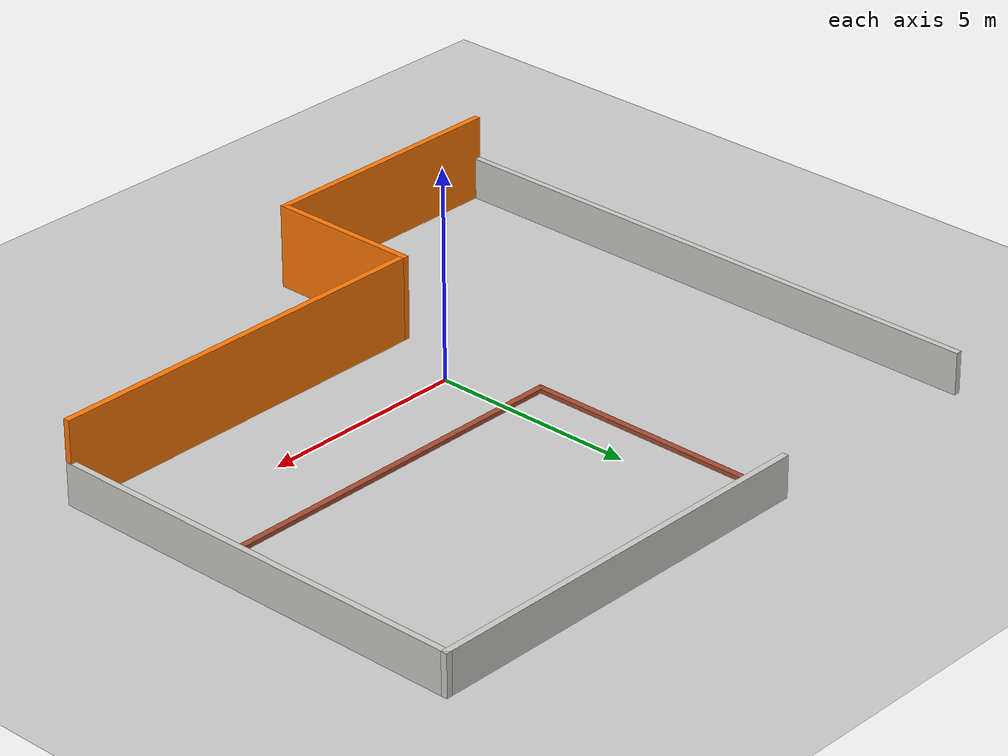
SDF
<sdf version="1.6">
 <world name="default">
  <light name="sun" type="directional">
   <pose>0 0 10 0 -0 0</pose>
   <diffuse>0.8 0.8 0.8 1</diffuse>
   <specular>0.2 0.2 0.2 1</specular>
   <attenuation>
    <range>1000</range>
    <constant>0.9</constant>
    <linear>0.01</linear>
    <quadratic>0.001</quadratic>
   </attenuation>
   <direction>-0.5 0.1 -0.9</direction>
  </light>
  <model name="ground_plane">
   <static>1</static>
   <link name="link">
    <collision name="collision">
     <geometry><plane><normal>0 0 1</normal><size>100 100</size></plane></geometry>
     <surface>
      <contact><collide_bitmask>65535</collide_bitmask></contact>
      <friction><ode><mu>100</mu><mu2>50</mu2></ode></friction>
     </surface>
    </collision>
    <visual name="visual">
     <cast_shadows>0</cast_shadows>
     <geometry><plane><normal>0 0 1</normal><size>100 100</size></plane></geometry>
     <material>
      <script><uri>file://media/materials/scripts/gazebo.material</uri><name>Gazebo/Grey</name></script>
     </material>
    </visual>
   </link>
  </model>
  <gravity>0 0 -9.8</gravity>
  <magnetic_field>6e-06 2.3e-05 -4.2e-05</magnetic_field>
  <atmosphere type="adiabatic"/>
  <physics name="default_physics" default="0" type="ode">
   <max_step_size>0.001</max_step_size>
   <real_time_factor>1</real_time_factor>
   <real_time_update_rate>1000</real_time_update_rate>
  </physics>
  <scene><ambient>0.4 0.4 0.4 1</ambient><background>0.7 0.7 0.7 1</background><shadows>1</shadows></scene>
  <audio><device>default</device></audio>
  <spherical_coordinates>
   <surface_model>EARTH_WGS84</surface_model>
   <latitude_deg>0</latitude_deg>
   <longitude_deg>0</longitude_deg>
   <elevation>0</elevation>
   <heading_deg>0</heading_deg>
  </spherical_coordinates>
  <model name="Map1_Driveway">
   <pose>0.965861 1.4319 0 0 -0 0</pose>
   <link name="Wall_21">
    <collision name="Wall_21_Collision">
     <geometry><box><size>14 0.15 1</size></box></geometry>
     <pose>0 0 0.5 0 -0 0</pose>
    </collision>
    <visual name="Wall_21_Visual">
     <pose>0 0 0.5 0 -0 0</pose>
     <geometry><box><size>14 0.15 1</size></box></geometry>
     <material>
      <script><uri>file://media/materials/scripts/gazebo.material</uri><name>Gazebo/CeilingTiled</name></script>
      <ambient>1 1 1 1</ambient>
     </material>
     <meta><layer>0</layer></meta>
    </visual>
    <pose>-7.85 -0.05 0 0 -0 -1.5708</pose>
   </link>
   <link name="Wall_23">
    <collision name="Wall_23_Collision">
     <geometry><box><size>6.25 0.15 2</size></box></geometry>
     <pose>0 0 1 0 -0 0</pose>
    </collision>
    <visual name="Wall_23_Visual">
     <pose>0 0 1 0 -0 0</pose>
     <geometry><box><size>6.25 0.15 2</size></box></geometry>
     <material>
      <script><uri>file://media/materials/scripts/gazebo.material</uri><name>Gazebo/Grey</name></script>
      <ambient>0.996078 0.47451 0.0196078 1</ambient>
     </material>
     <meta><layer>0</layer></meta>
    </visual>
    <pose>-4.8 -6.975 0 0 -0 0</pose>
   </link>
   <link name="Wall_24">
    <collision name="Wall_24_Collision">
     <geometry><box><size>3.75 0.15 2</size></box></geometry>
     <pose>0 0 1 0 -0 0</pose>
    </collision>
    <visual name="Wall_24_Visual">
     <pose>0 0 1 0 -0 0</pose>
     <geometry><box><size>3.75 0.15 2</size></box></geometry>
     <material>
      <script><uri>file://media/materials/scripts/gazebo.material</uri><name>Gazebo/Grey</name></script>
      <ambient>0.996078 0.47451 0.0196078 1</ambient>
     </material>
     <meta><layer>0</layer></meta>
    </visual>
    <pose>-1.75 -5.175 0 0 -0 1.5708</pose>
   </link>
   <link name="Wall_25">
    <collision name="Wall_25_Collision">
     <geometry><box><size>9.75 0.15 2</size></box></geometry>
     <pose>0 0 1 0 -0 0</pose>
    </collision>
    <visual name="Wall_25_Visual">
     <pose>0 0 1 0 -0 0</pose>
     <geometry><box><size>9.75 0.15 2</size></box></geometry>
     <material>
      <script><uri>file://media/materials/scripts/gazebo.material</uri><name>Gazebo/Grey</name></script>
      <ambient>0.996078 0.47451 0.0196078 1</ambient>
     </material>
     <meta><layer>0</layer></meta>
    </visual>
    <pose>3.05 -3.375 0 0 -0 0</pose>
   </link>
   <link name="Wall_26">
    <collision name="Wall_26_Collision">
     <geometry><box><size>10.5 0.15 1</size></box></geometry>
     <pose>0 0 0.5 0 -0 0</pose>
    </collision>
    <visual name="Wall_26_Visual">
     <pose>0 0 0.5 0 -0 0</pose>
     <geometry><box><size>10.5 0.15 1</size></box></geometry>
     <material>
      <script><uri>file://media/materials/scripts/gazebo.material</uri><name>Gazebo/CeilingTiled</name></script>
      <ambient>1 1 1 1</ambient>
     </material>
     <meta><layer>0</layer></meta>
    </visual>
    <pose>7.85 1.8 0 0 -0 1.5708</pose>
   </link>
   <link name="Wall_27">
    <collision name="Wall_27_Collision">
     <geometry><box><size>10 0.15 1</size></box></geometry>
     <pose>0 0 0.5 0 -0 0</pose>
    </collision>
    <visual name="Wall_27_Visual">
     <pose>0 0 0.5 0 -0 0</pose>
     <geometry><box><size>10 0.15 1</size></box></geometry>
     <material>
      <script><uri>file://media/materials/scripts/gazebo.material</uri><name>Gazebo/CeilingTiled</name></script>
      <ambient>1 1 1 1</ambient>
     </material>
     <meta><layer>0</layer></meta>
    </visual>
    <pose>2.925 6.975 0 0 -0 3.14159</pose>
   </link>
   <link name="Wall_28">
    <collision name="Wall_28_Collision">
     <geometry><box><size>6.75 0.15 0.1</size></box></geometry>
     <pose>0 0 0.05 0 -0 0</pose>
    </collision>
    <visual name="Wall_28_Visual">
     <pose>0 0 0.05 0 -0 0</pose>
     <geometry><box><size>6.75 0.15 0.1</size></box></geometry>
     <material>
      <script><uri>file://media/materials/scripts/gazebo.material</uri><name>Gazebo/Bricks</name></script>
      <ambient>1 1 1 1</ambient>
     </material>
     <meta><layer>0</layer></meta>
    </visual>
    <pose>-2 3.675 0 0 -0 -1.5708</pose>
   </link>
   <link name="Wall_29">
    <collision name="Wall_29_Collision">
     <geometry><box><size>10 0.15 0.1</size></box></geometry>
     <pose>0 0 0.05 0 -0 0</pose>
    </collision>
    <visual name="Wall_29_Visual">
     <pose>0 0 0.05 0 -0 0</pose>
     <geometry><box><size>10 0.15 0.1</size></box></geometry>
     <material>
      <script><uri>file://media/materials/scripts/gazebo.material</uri><name>Gazebo/Bricks</name></script>
      <ambient>1 1 1 1</ambient>
     </material>
     <meta><layer>0</layer></meta>
    </visual>
    <pose>2.925 0.375 0 0 -0 0</pose>
   </link>
   <static>1</static>
  </model>
 </world>
</sdf>
